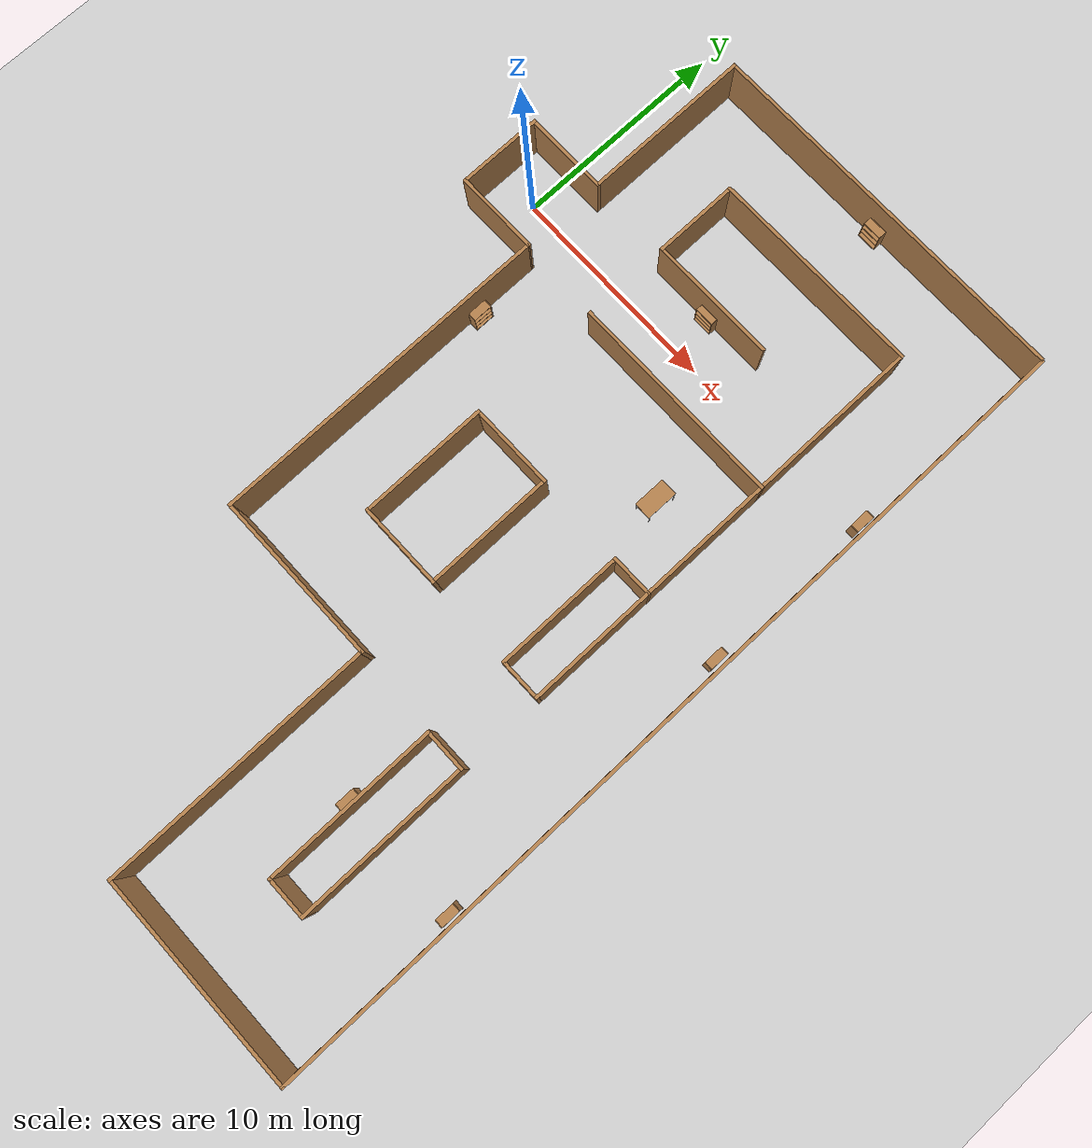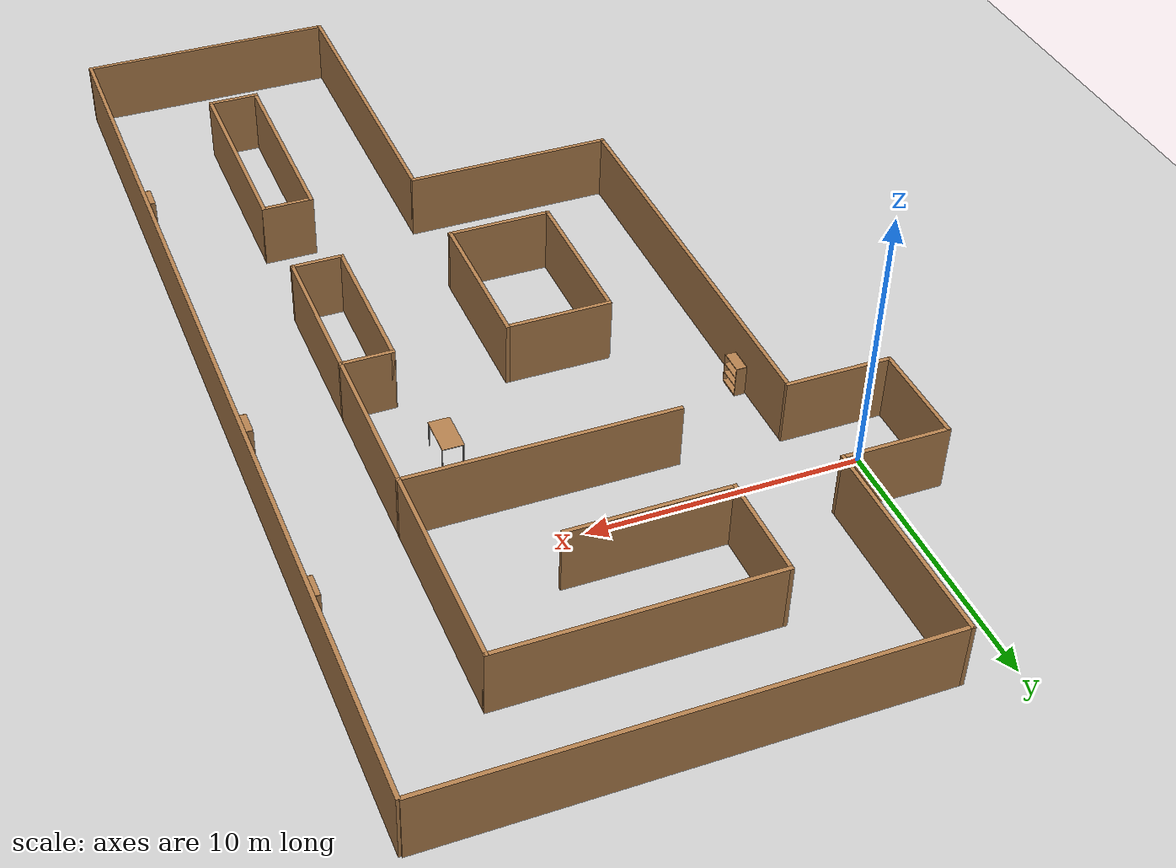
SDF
<sdf version="1.7">
 <world name="default">
  <light name="sun" type="directional">
   <pose>0 0 10 0 -0 0</pose>
   <diffuse>0.8 0.8 0.8 1</diffuse>
   <specular>0.2 0.2 0.2 1</specular>
   <attenuation>
    <range>1000</range>
    <constant>0.9</constant>
    <linear>0.01</linear>
    <quadratic>0.001</quadratic>
   </attenuation>
   <direction>-0.5 0.1 -0.9</direction>
   <spot><inner_angle>0</inner_angle><outer_angle>0</outer_angle><falloff>0</falloff></spot>
  </light>
  <model name="ground_plane">
   <static>1</static>
   <link name="link">
    <collision name="collision">
     <geometry><plane><normal>0 0 1</normal><size>100 100</size></plane></geometry>
     <surface>
      <contact><collide_bitmask>65535</collide_bitmask></contact>
      <friction><ode><mu>100</mu><mu2>50</mu2></ode></friction>
     </surface>
    </collision>
    <visual name="visual">
     <cast_shadows>0</cast_shadows>
     <geometry><plane><normal>0 0 1</normal><size>100 100</size></plane></geometry>
     <material>
      <script><uri>file://media/materials/scripts/gazebo.material</uri><name>Gazebo/Grey</name></script>
     </material>
    </visual>
   </link>
  </model>
  <gravity>0 0 -9.8</gravity>
  <magnetic_field>6e-06 2.3e-05 -4.2e-05</magnetic_field>
  <atmosphere type="adiabatic"/>
  <physics type="ode">
   <max_step_size>0.001</max_step_size>
   <real_time_factor>1</real_time_factor>
   <real_time_update_rate>1000</real_time_update_rate>
  </physics>
  <scene><ambient>0.4 0.4 0.4 1</ambient><background>0.7 0.7 0.7 1</background><shadows>1</shadows></scene>
  <spherical_coordinates>
   <surface_model>EARTH_WGS84</surface_model>
   <latitude_deg>0</latitude_deg>
   <longitude_deg>0</longitude_deg>
   <elevation>0</elevation>
   <heading_deg>0</heading_deg>
  </spherical_coordinates>
  <model name="dans_basic_maze_scaled">
   <pose>8.89521 -10.111 0 0 0 -1.56702</pose>
   <link name="Wall_100">
    <collision name="Wall_100_Collision">
     <geometry><box><size>2 0.15 2.5</size></box></geometry>
     <pose>0 0 1.25 0 -0 0</pose>
    </collision>
    <visual name="Wall_100_Visual">
     <pose>0 0 1.25 0 -0 0</pose>
     <geometry><box><size>2 0.15 2.5</size></box></geometry>
     <material>
      <script><uri>file://media/materials/scripts/gazebo.material</uri><name>Gazebo/Wood</name></script>
      <ambient>1 1 1 1</ambient>
     </material>
     <meta><layer>0</layer></meta>
    </visual>
    <pose>3.9 5.85 0 0 -0 -1.5708</pose>
   </link>
   <link name="Wall_102">
    <collision name="Wall_102_Collision">
     <geometry><box><size>6 0.15 2.5</size></box></geometry>
     <pose>0 0 1.25 0 -0 0</pose>
    </collision>
    <visual name="Wall_102_Visual">
     <pose>0 0 1.25 0 -0 0</pose>
     <geometry><box><size>6 0.15 2.5</size></box></geometry>
     <material>
      <script><uri>file://media/materials/scripts/gazebo.material</uri><name>Gazebo/Wood</name></script>
      <ambient>1 1 1 1</ambient>
     </material>
     <meta><layer>0</layer></meta>
    </visual>
    <pose>0.975 4.925 0 0 -0 3.14159</pose>
   </link>
   <link name="Wall_103">
    <collision name="Wall_103_Collision">
     <geometry><box><size>2 0.15 2.5</size></box></geometry>
     <pose>0 0 1.25 0 -0 0</pose>
    </collision>
    <visual name="Wall_103_Visual">
     <pose>0 0 1.25 0 -0 0</pose>
     <geometry><box><size>2 0.15 2.5</size></box></geometry>
     <material>
      <script><uri>file://media/materials/scripts/gazebo.material</uri><name>Gazebo/Wood</name></script>
      <ambient>1 1 1 1</ambient>
     </material>
     <meta><layer>0</layer></meta>
    </visual>
    <pose>-1.95 5.85 0 0 -0 1.5708</pose>
   </link>
   <link name="Wall_106">
    <collision name="Wall_106_Collision">
     <geometry><box><size>6 0.15 2.5</size></box></geometry>
     <pose>0 0 1.25 0 -0 0</pose>
    </collision>
    <visual name="Wall_106_Visual">
     <pose>0 0 1.25 0 -0 0</pose>
     <geometry><box><size>6 0.15 2.5</size></box></geometry>
     <material>
      <script><uri>file://media/materials/scripts/gazebo.material</uri><name>Gazebo/Wood</name></script>
      <ambient>1 1 1 1</ambient>
     </material>
     <meta><layer>0</layer></meta>
    </visual>
    <pose>-12.1 -0.15 0 0 -0 1.5708</pose>
   </link>
   <link name="Wall_110">
    <collision name="Wall_110_Collision">
     <geometry><box><size>10 0.15 2.5</size></box></geometry>
     <pose>0 0 1.25 0 -0 0</pose>
    </collision>
    <visual name="Wall_110_Visual">
     <pose>0 0 1.25 0 -0 0</pose>
     <geometry><box><size>10 0.15 2.5</size></box></geometry>
     <material>
      <script><uri>file://media/materials/scripts/gazebo.material</uri><name>Gazebo/Wood</name></script>
      <ambient>1 1 1 1</ambient>
     </material>
     <meta><layer>0</layer></meta>
    </visual>
    <pose>-8.08614 1.85905 0 0 -0 -1.5708</pose>
   </link>
   <link name="Wall_25">
    <collision name="Wall_25_Collision">
     <geometry><box><size>4 0.15 2.5</size></box></geometry>
     <pose>0 0 1.25 0 -0 0</pose>
    </collision>
    <visual name="Wall_25_Visual">
     <pose>0 0 1.25 0 -0 0</pose>
     <geometry><box><size>4 0.15 2.5</size></box></geometry>
     <material>
      <script><uri>file://media/materials/scripts/gazebo.material</uri><name>Gazebo/Wood</name></script>
      <ambient>1 1 1 1</ambient>
     </material>
     <meta><layer>0</layer></meta>
    </visual>
    <pose>-12.1 -8.85 0 0 -0 -1.5708</pose>
   </link>
   <link name="Wall_27">
    <collision name="Wall_27_Collision">
     <geometry><box><size>4 0.15 2.5</size></box></geometry>
     <pose>0 0 1.25 0 -0 0</pose>
    </collision>
    <visual name="Wall_27_Visual">
     <pose>0 0 1.25 0 -0 0</pose>
     <geometry><box><size>4 0.15 2.5</size></box></geometry>
     <material>
      <script><uri>file://media/materials/scripts/gazebo.material</uri><name>Gazebo/Wood</name></script>
      <ambient>1 1 1 1</ambient>
     </material>
     <meta><layer>0</layer></meta>
    </visual>
    <pose>-10.175 -10.775 0 0 -0 0</pose>
   </link>
   <link name="Wall_29">
    <collision name="Wall_29_Collision">
     <geometry><box><size>4 0.15 2.5</size></box></geometry>
     <pose>0 0 1.25 0 -0 0</pose>
    </collision>
    <visual name="Wall_29_Visual">
     <pose>0 0 1.25 0 -0 0</pose>
     <geometry><box><size>4 0.15 2.5</size></box></geometry>
     <material>
      <script><uri>file://media/materials/scripts/gazebo.material</uri><name>Gazebo/Wood</name></script>
      <ambient>1 1 1 1</ambient>
     </material>
     <meta><layer>0</layer></meta>
    </visual>
    <pose>-8.25 -8.85 0 0 -0 1.5708</pose>
   </link>
   <link name="Wall_31">
    <collision name="Wall_31_Collision">
     <geometry><box><size>16 0.15 2.5</size></box></geometry>
     <pose>0 0 1.25 0 -0 0</pose>
    </collision>
    <visual name="Wall_31_Visual">
     <pose>0 0 1.25 0 -0 0</pose>
     <geometry><box><size>16 0.15 2.5</size></box></geometry>
     <material>
      <script><uri>file://media/materials/scripts/gazebo.material</uri><name>Gazebo/Wood</name></script>
      <ambient>1 1 1 1</ambient>
     </material>
     <meta><layer>0</layer></meta>
    </visual>
    <pose>-0.325 -6.925 0 0 -0 0</pose>
   </link>
   <link name="Wall_33">
    <collision name="Wall_33_Collision">
     <geometry><box><size>8 0.15 2.5</size></box></geometry>
     <pose>0 0 1.25 0 -0 0</pose>
    </collision>
    <visual name="Wall_33_Visual">
     <pose>0 0 1.25 0 -0 0</pose>
     <geometry><box><size>8 0.15 2.5</size></box></geometry>
     <material>
      <script><uri>file://media/materials/scripts/gazebo.material</uri><name>Gazebo/Wood</name></script>
      <ambient>1 1 1 1</ambient>
     </material>
     <meta><layer>0</layer></meta>
    </visual>
    <pose>7.6 -3 0 0 -0 1.5708</pose>
   </link>
   <link name="Wall_35">
    <collision name="Wall_35_Collision">
     <geometry><box><size>12.5 0.15 2.5</size></box></geometry>
     <pose>0 0 1.25 0 -0 0</pose>
    </collision>
    <visual name="Wall_35_Visual">
     <pose>0 0 1.25 0 -0 0</pose>
     <geometry><box><size>12.5 0.15 2.5</size></box></geometry>
     <material>
      <script><uri>file://media/materials/scripts/gazebo.material</uri><name>Gazebo/Wood</name></script>
      <ambient>1 1 1 1</ambient>
     </material>
     <meta><layer>0</layer></meta>
    </visual>
    <pose>13.775 0.925 0 0 -0 0</pose>
   </link>
   <link name="Wall_41">
    <collision name="Wall_41_Collision">
     <geometry><box><size>10 0.15 2.5</size></box></geometry>
     <pose>0 0 1.25 0 -0 0</pose>
    </collision>
    <visual name="Wall_41_Visual">
     <pose>0 0 1.25 0 -0 0</pose>
     <geometry><box><size>10 0.15 2.5</size></box></geometry>
     <material>
      <script><uri>file://media/materials/scripts/gazebo.material</uri><name>Gazebo/Wood</name></script>
      <ambient>1 1 1 1</ambient>
     </material>
     <meta><layer>0</layer></meta>
    </visual>
    <pose>19.95 5.85 0 0 -0 1.5708</pose>
   </link>
   <link name="Wall_43">
    <collision name="Wall_43_Collision">
     <geometry><box><size>40 0.15 2.5</size></box></geometry>
     <pose>0 0 1.25 0 -0 0</pose>
    </collision>
    <visual name="Wall_43_Visual">
     <pose>0 0 1.25 0 -0 0</pose>
     <geometry><box><size>40 0.15 2.5</size></box></geometry>
     <material>
      <script><uri>file://media/materials/scripts/gazebo.material</uri><name>Gazebo/Wood</name></script>
      <ambient>1 1 1 1</ambient>
     </material>
     <meta><layer>0</layer></meta>
    </visual>
    <pose>0.025 10.775 0 0 -0 3.14159</pose>
   </link>
   <link name="Wall_45">
    <collision name="Wall_45_Collision">
     <geometry><box><size>8 0.15 2.5</size></box></geometry>
     <pose>0 0 1.25 0 -0 0</pose>
    </collision>
    <visual name="Wall_45_Visual">
     <pose>0 0 1.25 0 -0 0</pose>
     <geometry><box><size>8 0.15 2.5</size></box></geometry>
     <material>
      <script><uri>file://media/materials/scripts/gazebo.material</uri><name>Gazebo/Wood</name></script>
      <ambient>1 1 1 1</ambient>
     </material>
     <meta><layer>0</layer></meta>
    </visual>
    <pose>-16.025 -6.925 0 0 -0 3.14159</pose>
   </link>
   <link name="Wall_47">
    <collision name="Wall_47_Collision">
     <geometry><box><size>17.75 0.15 2.5</size></box></geometry>
     <pose>0 0 1.25 0 -0 0</pose>
    </collision>
    <visual name="Wall_47_Visual">
     <pose>0 0 1.25 0 -0 0</pose>
     <geometry><box><size>17.75 0.15 2.5</size></box></geometry>
     <material>
      <script><uri>file://media/materials/scripts/gazebo.material</uri><name>Gazebo/Wood</name></script>
      <ambient>1 1 1 1</ambient>
     </material>
     <meta><layer>0</layer></meta>
    </visual>
    <pose>-19.95 1.875 0 0 -0 1.5708</pose>
   </link>
   <link name="Wall_55">
    <collision name="Wall_55_Collision">
     <geometry><box><size>2 0.15 2.5</size></box></geometry>
     <pose>0 0 1.25 0 -0 0</pose>
    </collision>
    <visual name="Wall_55_Visual">
     <pose>0 0 1.25 0 -0 0</pose>
     <geometry><box><size>2 0.15 2.5</size></box></geometry>
     <material>
      <script><uri>file://media/materials/scripts/gazebo.material</uri><name>Gazebo/Wood</name></script>
      <ambient>1 1 1 1</ambient>
     </material>
     <meta><layer>0</layer></meta>
    </visual>
    <pose>7.76099 5.86395 0 0 -0 -1.5708</pose>
   </link>
   <link name="Wall_57">
    <collision name="Wall_57_Collision">
     <geometry><box><size>8 0.15 2.5</size></box></geometry>
     <pose>0 0 1.25 0 -0 0</pose>
    </collision>
    <visual name="Wall_57_Visual">
     <pose>0 0 1.25 0 -0 0</pose>
     <geometry><box><size>8 0.15 2.5</size></box></geometry>
     <material>
      <script><uri>file://media/materials/scripts/gazebo.material</uri><name>Gazebo/Wood</name></script>
      <ambient>1 1 1 1</ambient>
     </material>
     <meta><layer>0</layer></meta>
    </visual>
    <pose>11.686 6.78895 0 0 -0 0</pose>
   </link>
   <link name="Wall_59">
    <collision name="Wall_59_Collision">
     <geometry><box><size>8 0.15 2.5</size></box></geometry>
     <pose>0 0 1.25 0 -0 0</pose>
    </collision>
    <visual name="Wall_59_Visual">
     <pose>0 0 1.25 0 -0 0</pose>
     <geometry><box><size>8 0.15 2.5</size></box></geometry>
     <material>
      <script><uri>file://media/materials/scripts/gazebo.material</uri><name>Gazebo/Wood</name></script>
      <ambient>1 1 1 1</ambient>
     </material>
     <meta><layer>0</layer></meta>
    </visual>
    <pose>11.686 4.93895 0 0 -0 0</pose>
   </link>
   <link name="Wall_61">
    <collision name="Wall_61_Collision">
     <geometry><box><size>2 0.15 2.5</size></box></geometry>
     <pose>0 0 1.25 0 -0 0</pose>
    </collision>
    <visual name="Wall_61_Visual">
     <pose>0 0 1.25 0 -0 0</pose>
     <geometry><box><size>2 0.15 2.5</size></box></geometry>
     <material>
      <script><uri>file://media/materials/scripts/gazebo.material</uri><name>Gazebo/Wood</name></script>
      <ambient>1 1 1 1</ambient>
     </material>
     <meta><layer>0</layer></meta>
    </visual>
    <pose>15.611 5.86395 0 0 -0 -1.5708</pose>
   </link>
   <link name="Wall_69">
    <collision name="Wall_69_Collision">
     <geometry><box><size>6 0.15 2.5</size></box></geometry>
     <pose>0 0 1.25 0 -0 0</pose>
    </collision>
    <visual name="Wall_69_Visual">
     <pose>0 0 1.25 0 -0 0</pose>
     <geometry><box><size>6 0.15 2.5</size></box></geometry>
     <material>
      <script><uri>file://media/materials/scripts/gazebo.material</uri><name>Gazebo/Wood</name></script>
      <ambient>1 1 1 1</ambient>
     </material>
     <meta><layer>0</layer></meta>
    </visual>
    <pose>0.881394 0.762085 0 0 -0 3.14159</pose>
   </link>
   <link name="Wall_80">
    <collision name="Wall_80_Collision">
     <geometry><box><size>4 0.15 2.5</size></box></geometry>
     <pose>0 0 1.25 0 -0 0</pose>
    </collision>
    <visual name="Wall_80_Visual">
     <pose>0 0 1.25 0 -0 0</pose>
     <geometry><box><size>4 0.15 2.5</size></box></geometry>
     <material>
      <script><uri>file://media/materials/scripts/gazebo.material</uri><name>Gazebo/Wood</name></script>
      <ambient>1 1 1 1</ambient>
     </material>
     <meta><layer>0</layer></meta>
    </visual>
    <pose>3.8064 -1.16291 0 0 -0 -1.5708</pose>
   </link>
   <link name="Wall_82">
    <collision name="Wall_82_Collision">
     <geometry><box><size>6 0.15 2.5</size></box></geometry>
     <pose>0 0 1.25 0 -0 0</pose>
    </collision>
    <visual name="Wall_82_Visual">
     <pose>0 0 1.25 0 -0 0</pose>
     <geometry><box><size>6 0.15 2.5</size></box></geometry>
     <material>
      <script><uri>file://media/materials/scripts/gazebo.material</uri><name>Gazebo/Wood</name></script>
      <ambient>1 1 1 1</ambient>
     </material>
     <meta><layer>0</layer></meta>
    </visual>
    <pose>0.881394 -3.08792 0 0 -0 3.14159</pose>
   </link>
   <link name="Wall_84">
    <collision name="Wall_84_Collision">
     <geometry><box><size>4 0.15 2.5</size></box></geometry>
     <pose>0 0 1.25 0 -0 0</pose>
    </collision>
    <visual name="Wall_84_Visual">
     <pose>0 0 1.25 0 -0 0</pose>
     <geometry><box><size>4 0.15 2.5</size></box></geometry>
     <material>
      <script><uri>file://media/materials/scripts/gazebo.material</uri><name>Gazebo/Wood</name></script>
      <ambient>1 1 1 1</ambient>
     </material>
     <meta><layer>0</layer></meta>
    </visual>
    <pose>-2.04361 -1.16291 0 0 -0 -1.5708</pose>
   </link>
   <link name="Wall_89">
    <collision name="Wall_89_Collision">
     <geometry><box><size>4 0.15 2.5</size></box></geometry>
     <pose>0 0 1.25 0 -0 0</pose>
    </collision>
    <visual name="Wall_89_Visual">
     <pose>0 0 1.25 0 -0 0</pose>
     <geometry><box><size>4 0.15 2.5</size></box></geometry>
     <material>
      <script><uri>file://media/materials/scripts/gazebo.material</uri><name>Gazebo/Wood</name></script>
      <ambient>1 1 1 1</ambient>
     </material>
     <meta><layer>0</layer></meta>
    </visual>
    <pose>-14.025 -3.075 0 0 -0 3.14159</pose>
   </link>
   <link name="Wall_91">
    <collision name="Wall_91_Collision">
     <geometry><box><size>10 0.15 2.5</size></box></geometry>
     <pose>0 0 1.25 0 -0 0</pose>
    </collision>
    <visual name="Wall_91_Visual">
     <pose>0 0 1.25 0 -0 0</pose>
     <geometry><box><size>10 0.15 2.5</size></box></geometry>
     <material>
      <script><uri>file://media/materials/scripts/gazebo.material</uri><name>Gazebo/Wood</name></script>
      <ambient>1 1 1 1</ambient>
     </material>
     <meta><layer>0</layer></meta>
    </visual>
    <pose>-15.95 1.85 0 0 -0 1.5708</pose>
   </link>
   <link name="Wall_98">
    <collision name="Wall_98_Collision">
     <geometry><box><size>20 0.15 2.5</size></box></geometry>
     <pose>0 0 1.25 0 -0 0</pose>
    </collision>
    <visual name="Wall_98_Visual">
     <pose>0 0 1.25 0 -0 0</pose>
     <geometry><box><size>20 0.15 2.5</size></box></geometry>
     <material>
      <script><uri>file://media/materials/scripts/gazebo.material</uri><name>Gazebo/Wood</name></script>
      <ambient>1 1 1 1</ambient>
     </material>
     <meta><layer>0</layer></meta>
    </visual>
    <pose>-6.025 6.775 0 0 -0 0</pose>
   </link>
   <static>1</static>
  </model>
  <model name="bookshelf">
   <static>1</static>
   <link name="link">
    <inertial><mass>1</mass></inertial>
    <collision name="back">
     <pose>0 0.005 0.6 0 -0 0</pose>
     <geometry><box><size>0.9 0.01 1.2</size></box></geometry>
    </collision>
    <visual name="visual1">
     <pose>0 0.005 0.6 0 -0 0</pose>
     <geometry><box><size>0.9 0.01 1.2</size></box></geometry>
     <material>
      <script><uri>file://media/materials/scripts/gazebo.material</uri><name>Gazebo/Wood</name></script>
     </material>
    </visual>
    <collision name="left_side">
     <pose>0.45 -0.195 0.6 0 -0 0</pose>
     <geometry><box><size>0.02 0.4 1.2</size></box></geometry>
    </collision>
    <visual name="visual2">
     <pose>0.45 -0.195 0.6 0 -0 0</pose>
     <geometry><box><size>0.02 0.4 1.2</size></box></geometry>
     <material>
      <script><uri>file://media/materials/scripts/gazebo.material</uri><name>Gazebo/Wood</name></script>
     </material>
    </visual>
    <collision name="right_side">
     <pose>-0.45 -0.195 0.6 0 -0 0</pose>
     <geometry><box><size>0.02 0.4 1.2</size></box></geometry>
    </collision>
    <visual name="visual3">
     <pose>-0.45 -0.195 0.6 0 -0 0</pose>
     <geometry><box><size>0.02 0.4 1.2</size></box></geometry>
     <material>
      <script><uri>file://media/materials/scripts/gazebo.material</uri><name>Gazebo/Wood</name></script>
     </material>
    </visual>
    <collision name="bottom">
     <pose>0 -0.195 0.03 0 -0 0</pose>
     <geometry><box><size>0.88 0.4 0.06</size></box></geometry>
    </collision>
    <visual name="visual4">
     <pose>0 -0.195 0.03 0 -0 0</pose>
     <geometry><box><size>0.88 0.4 0.06</size></box></geometry>
     <material>
      <script><uri>file://media/materials/scripts/gazebo.material</uri><name>Gazebo/Wood</name></script>
     </material>
    </visual>
    <collision name="top">
     <pose>0 -0.195 1.19 0 -0 0</pose>
     <geometry><box><size>0.88 0.4 0.02</size></box></geometry>
    </collision>
    <visual name="visual5">
     <pose>0 -0.195 1.19 0 -0 0</pose>
     <geometry><box><size>0.88 0.4 0.02</size></box></geometry>
     <material>
      <script><uri>file://media/materials/scripts/gazebo.material</uri><name>Gazebo/Wood</name></script>
     </material>
    </visual>
    <collision name="low_shelf">
     <pose>0 -0.195 0.43 0 -0 0</pose>
     <geometry><box><size>0.88 0.4 0.02</size></box></geometry>
    </collision>
    <visual name="visual6">
     <pose>0 -0.195 0.43 0 -0 0</pose>
     <geometry><box><size>0.88 0.4 0.02</size></box></geometry>
     <material>
      <script><uri>file://media/materials/scripts/gazebo.material</uri><name>Gazebo/Wood</name></script>
     </material>
    </visual>
    <collision name="high_shelf">
     <pose>0 -0.195 0.8 0 -0 0</pose>
     <geometry><box><size>0.88 0.4 0.02</size></box></geometry>
    </collision>
    <visual name="visual7">
     <pose>0 -0.195 0.8 0 -0 0</pose>
     <geometry><box><size>0.88 0.4 0.02</size></box></geometry>
     <material>
      <script><uri>file://media/materials/scripts/gazebo.material</uri><name>Gazebo/Wood</name></script>
     </material>
    </visual>
   </link>
   <pose>10.8122 9.75594 0 0 -0 0</pose>
  </model>
  <model name="table">
   <static>1</static>
   <link name="link">
    <collision name="surface">
     <pose>0 0 1 0 -0 0</pose>
     <geometry><box><size>1.5 0.8 0.03</size></box></geometry>
     <surface><friction><ode><mu>0.6</mu><mu2>0.6</mu2></ode></friction></surface>
    </collision>
    <visual name="visual1">
     <pose>0 0 1 0 -0 0</pose>
     <geometry><box><size>1.5 0.8 0.03</size></box></geometry>
     <material>
      <script><uri>file://media/materials/scripts/gazebo.material</uri><name>Gazebo/Wood</name></script>
     </material>
    </visual>
    <collision name="front_left_leg">
     <pose>0.68 0.38 0.5 0 -0 0</pose>
     <geometry><cylinder><radius>0.02</radius><length>1</length></cylinder></geometry>
    </collision>
    <visual name="front_left_leg">
     <pose>0.68 0.38 0.5 0 -0 0</pose>
     <geometry><cylinder><radius>0.02</radius><length>1</length></cylinder></geometry>
     <material>
      <script><uri>file://media/materials/scripts/gazebo.material</uri><name>Gazebo/Grey</name></script>
     </material>
    </visual>
    <collision name="front_right_leg">
     <pose>0.68 -0.38 0.5 0 -0 0</pose>
     <geometry><cylinder><radius>0.02</radius><length>1</length></cylinder></geometry>
    </collision>
    <visual name="front_right_leg">
     <pose>0.68 -0.38 0.5 0 -0 0</pose>
     <geometry><cylinder><radius>0.02</radius><length>1</length></cylinder></geometry>
     <material>
      <script><uri>file://media/materials/scripts/gazebo.material</uri><name>Gazebo/Grey</name></script>
     </material>
    </visual>
    <collision name="back_right_leg">
     <pose>-0.68 -0.38 0.5 0 -0 0</pose>
     <geometry><cylinder><radius>0.02</radius><length>1</length></cylinder></geometry>
    </collision>
    <visual name="back_right_leg">
     <pose>-0.68 -0.38 0.5 0 -0 0</pose>
     <geometry><cylinder><radius>0.02</radius><length>1</length></cylinder></geometry>
     <material>
      <script><uri>file://media/materials/scripts/gazebo.material</uri><name>Gazebo/Grey</name></script>
     </material>
    </visual>
    <collision name="back_left_leg">
     <pose>-0.68 0.38 0.5 0 -0 0</pose>
     <geometry><cylinder><radius>0.02</radius><length>1</length></cylinder></geometry>
    </collision>
    <visual name="back_left_leg">
     <pose>-0.68 0.38 0.5 0 -0 0</pose>
     <geometry><cylinder><radius>0.02</radius><length>1</length></cylinder></geometry>
     <material>
      <script><uri>file://media/materials/scripts/gazebo.material</uri><name>Gazebo/Grey</name></script>
     </material>
    </visual>
   </link>
   <pose>12.9709 -5.10769 0 0 -0 1.57</pose>
  </model>
  <model name="bookshelf_0">
   <static>1</static>
   <link name="link">
    <inertial><mass>1</mass></inertial>
    <collision name="back">
     <pose>0 0.005 0.6 0 -0 0</pose>
     <geometry><box><size>0.9 0.01 1.2</size></box></geometry>
    </collision>
    <visual name="visual1">
     <pose>0 0.005 0.6 0 -0 0</pose>
     <geometry><box><size>0.9 0.01 1.2</size></box></geometry>
     <material>
      <script><uri>file://media/materials/scripts/gazebo.material</uri><name>Gazebo/Wood</name></script>
     </material>
    </visual>
    <collision name="left_side">
     <pose>0.45 -0.195 0.6 0 -0 0</pose>
     <geometry><box><size>0.02 0.4 1.2</size></box></geometry>
    </collision>
    <visual name="visual2">
     <pose>0.45 -0.195 0.6 0 -0 0</pose>
     <geometry><box><size>0.02 0.4 1.2</size></box></geometry>
     <material>
      <script><uri>file://media/materials/scripts/gazebo.material</uri><name>Gazebo/Wood</name></script>
     </material>
    </visual>
    <collision name="right_side">
     <pose>-0.45 -0.195 0.6 0 -0 0</pose>
     <geometry><box><size>0.02 0.4 1.2</size></box></geometry>
    </collision>
    <visual name="visual3">
     <pose>-0.45 -0.195 0.6 0 -0 0</pose>
     <geometry><box><size>0.02 0.4 1.2</size></box></geometry>
     <material>
      <script><uri>file://media/materials/scripts/gazebo.material</uri><name>Gazebo/Wood</name></script>
     </material>
    </visual>
    <collision name="bottom">
     <pose>0 -0.195 0.03 0 -0 0</pose>
     <geometry><box><size>0.88 0.4 0.06</size></box></geometry>
    </collision>
    <visual name="visual4">
     <pose>0 -0.195 0.03 0 -0 0</pose>
     <geometry><box><size>0.88 0.4 0.06</size></box></geometry>
     <material>
      <script><uri>file://media/materials/scripts/gazebo.material</uri><name>Gazebo/Wood</name></script>
     </material>
    </visual>
    <collision name="top">
     <pose>0 -0.195 1.19 0 -0 0</pose>
     <geometry><box><size>0.88 0.4 0.02</size></box></geometry>
    </collision>
    <visual name="visual5">
     <pose>0 -0.195 1.19 0 -0 0</pose>
     <geometry><box><size>0.88 0.4 0.02</size></box></geometry>
     <material>
      <script><uri>file://media/materials/scripts/gazebo.material</uri><name>Gazebo/Wood</name></script>
     </material>
    </visual>
    <collision name="low_shelf">
     <pose>0 -0.195 0.43 0 -0 0</pose>
     <geometry><box><size>0.88 0.4 0.02</size></box></geometry>
    </collision>
    <visual name="visual6">
     <pose>0 -0.195 0.43 0 -0 0</pose>
     <geometry><box><size>0.88 0.4 0.02</size></box></geometry>
     <material>
      <script><uri>file://media/materials/scripts/gazebo.material</uri><name>Gazebo/Wood</name></script>
     </material>
    </visual>
    <collision name="high_shelf">
     <pose>0 -0.195 0.8 0 -0 0</pose>
     <geometry><box><size>0.88 0.4 0.02</size></box></geometry>
    </collision>
    <visual name="visual7">
     <pose>0 -0.195 0.8 0 -0 0</pose>
     <geometry><box><size>0.88 0.4 0.02</size></box></geometry>
     <material>
      <script><uri>file://media/materials/scripts/gazebo.material</uri><name>Gazebo/Wood</name></script>
     </material>
    </visual>
   </link>
   <pose>8.7698 1.98342 0 0 -0 0</pose>
  </model>
  <model name="bookshelf_1">
   <static>1</static>
   <link name="link">
    <inertial><mass>1</mass></inertial>
    <collision name="back">
     <pose>0 0.005 0.6 0 -0 0</pose>
     <geometry><box><size>0.9 0.01 1.2</size></box></geometry>
    </collision>
    <visual name="visual1">
     <pose>0 0.005 0.6 0 -0 0</pose>
     <geometry><box><size>0.9 0.01 1.2</size></box></geometry>
     <material>
      <script><uri>file://media/materials/scripts/gazebo.material</uri><name>Gazebo/Wood</name></script>
     </material>
    </visual>
    <collision name="left_side">
     <pose>0.45 -0.195 0.6 0 -0 0</pose>
     <geometry><box><size>0.02 0.4 1.2</size></box></geometry>
    </collision>
    <visual name="visual2">
     <pose>0.45 -0.195 0.6 0 -0 0</pose>
     <geometry><box><size>0.02 0.4 1.2</size></box></geometry>
     <material>
      <script><uri>file://media/materials/scripts/gazebo.material</uri><name>Gazebo/Wood</name></script>
     </material>
    </visual>
    <collision name="right_side">
     <pose>-0.45 -0.195 0.6 0 -0 0</pose>
     <geometry><box><size>0.02 0.4 1.2</size></box></geometry>
    </collision>
    <visual name="visual3">
     <pose>-0.45 -0.195 0.6 0 -0 0</pose>
     <geometry><box><size>0.02 0.4 1.2</size></box></geometry>
     <material>
      <script><uri>file://media/materials/scripts/gazebo.material</uri><name>Gazebo/Wood</name></script>
     </material>
    </visual>
    <collision name="bottom">
     <pose>0 -0.195 0.03 0 -0 0</pose>
     <geometry><box><size>0.88 0.4 0.06</size></box></geometry>
    </collision>
    <visual name="visual4">
     <pose>0 -0.195 0.03 0 -0 0</pose>
     <geometry><box><size>0.88 0.4 0.06</size></box></geometry>
     <material>
      <script><uri>file://media/materials/scripts/gazebo.material</uri><name>Gazebo/Wood</name></script>
     </material>
    </visual>
    <collision name="top">
     <pose>0 -0.195 1.19 0 -0 0</pose>
     <geometry><box><size>0.88 0.4 0.02</size></box></geometry>
    </collision>
    <visual name="visual5">
     <pose>0 -0.195 1.19 0 -0 0</pose>
     <geometry><box><size>0.88 0.4 0.02</size></box></geometry>
     <material>
      <script><uri>file://media/materials/scripts/gazebo.material</uri><name>Gazebo/Wood</name></script>
     </material>
    </visual>
    <collision name="low_shelf">
     <pose>0 -0.195 0.43 0 -0 0</pose>
     <geometry><box><size>0.88 0.4 0.02</size></box></geometry>
    </collision>
    <visual name="visual6">
     <pose>0 -0.195 0.43 0 -0 0</pose>
     <geometry><box><size>0.88 0.4 0.02</size></box></geometry>
     <material>
      <script><uri>file://media/materials/scripts/gazebo.material</uri><name>Gazebo/Wood</name></script>
     </material>
    </visual>
    <collision name="high_shelf">
     <pose>0 -0.195 0.8 0 -0 0</pose>
     <geometry><box><size>0.88 0.4 0.02</size></box></geometry>
    </collision>
    <visual name="visual7">
     <pose>0 -0.195 0.8 0 -0 0</pose>
     <geometry><box><size>0.88 0.4 0.02</size></box></geometry>
     <material>
      <script><uri>file://media/materials/scripts/gazebo.material</uri><name>Gazebo/Wood</name></script>
     </material>
    </visual>
   </link>
   <pose>19.4821 0.293917 0 0 0 -1.57</pose>
  </model>
  <model name="bookshelf_1_clone">
   <static>1</static>
   <link name="link">
    <inertial><mass>1</mass></inertial>
    <collision name="back">
     <pose>0 0.005 0.6 0 -0 0</pose>
     <geometry><box><size>0.9 0.01 1.2</size></box></geometry>
    </collision>
    <visual name="visual1">
     <pose>0 0.005 0.6 0 -0 0</pose>
     <geometry><box><size>0.9 0.01 1.2</size></box></geometry>
     <material>
      <script><uri>file://media/materials/scripts/gazebo.material</uri><name>Gazebo/Wood</name></script>
     </material>
    </visual>
    <collision name="left_side">
     <pose>0.45 -0.195 0.6 0 -0 0</pose>
     <geometry><box><size>0.02 0.4 1.2</size></box></geometry>
    </collision>
    <visual name="visual2">
     <pose>0.45 -0.195 0.6 0 -0 0</pose>
     <geometry><box><size>0.02 0.4 1.2</size></box></geometry>
     <material>
      <script><uri>file://media/materials/scripts/gazebo.material</uri><name>Gazebo/Wood</name></script>
     </material>
    </visual>
    <collision name="right_side">
     <pose>-0.45 -0.195 0.6 0 -0 0</pose>
     <geometry><box><size>0.02 0.4 1.2</size></box></geometry>
    </collision>
    <visual name="visual3">
     <pose>-0.45 -0.195 0.6 0 -0 0</pose>
     <geometry><box><size>0.02 0.4 1.2</size></box></geometry>
     <material>
      <script><uri>file://media/materials/scripts/gazebo.material</uri><name>Gazebo/Wood</name></script>
     </material>
    </visual>
    <collision name="bottom">
     <pose>0 -0.195 0.03 0 -0 0</pose>
     <geometry><box><size>0.88 0.4 0.06</size></box></geometry>
    </collision>
    <visual name="visual4">
     <pose>0 -0.195 0.03 0 -0 0</pose>
     <geometry><box><size>0.88 0.4 0.06</size></box></geometry>
     <material>
      <script><uri>file://media/materials/scripts/gazebo.material</uri><name>Gazebo/Wood</name></script>
     </material>
    </visual>
    <collision name="top">
     <pose>0 -0.195 1.19 0 -0 0</pose>
     <geometry><box><size>0.88 0.4 0.02</size></box></geometry>
    </collision>
    <visual name="visual5">
     <pose>0 -0.195 1.19 0 -0 0</pose>
     <geometry><box><size>0.88 0.4 0.02</size></box></geometry>
     <material>
      <script><uri>file://media/materials/scripts/gazebo.material</uri><name>Gazebo/Wood</name></script>
     </material>
    </visual>
    <collision name="low_shelf">
     <pose>0 -0.195 0.43 0 -0 0</pose>
     <geometry><box><size>0.88 0.4 0.02</size></box></geometry>
    </collision>
    <visual name="visual6">
     <pose>0 -0.195 0.43 0 -0 0</pose>
     <geometry><box><size>0.88 0.4 0.02</size></box></geometry>
     <material>
      <script><uri>file://media/materials/scripts/gazebo.material</uri><name>Gazebo/Wood</name></script>
     </material>
    </visual>
    <collision name="high_shelf">
     <pose>0 -0.195 0.8 0 -0 0</pose>
     <geometry><box><size>0.88 0.4 0.02</size></box></geometry>
    </collision>
    <visual name="visual7">
     <pose>0 -0.195 0.8 0 -0 0</pose>
     <geometry><box><size>0.88 0.4 0.02</size></box></geometry>
     <material>
      <script><uri>file://media/materials/scripts/gazebo.material</uri><name>Gazebo/Wood</name></script>
     </material>
    </visual>
   </link>
   <pose>19.4492 -7.76646 0 0 0 -1.57</pose>
  </model>
  <model name="bookshelf_1_clone_clone">
   <static>1</static>
   <link name="link">
    <inertial><mass>1</mass></inertial>
    <collision name="back">
     <pose>0 0.005 0.6 0 -0 0</pose>
     <geometry><box><size>0.9 0.01 1.2</size></box></geometry>
    </collision>
    <visual name="visual1">
     <pose>0 0.005 0.6 0 -0 0</pose>
     <geometry><box><size>0.9 0.01 1.2</size></box></geometry>
     <material>
      <script><uri>file://media/materials/scripts/gazebo.material</uri><name>Gazebo/Wood</name></script>
     </material>
    </visual>
    <collision name="left_side">
     <pose>0.45 -0.195 0.6 0 -0 0</pose>
     <geometry><box><size>0.02 0.4 1.2</size></box></geometry>
    </collision>
    <visual name="visual2">
     <pose>0.45 -0.195 0.6 0 -0 0</pose>
     <geometry><box><size>0.02 0.4 1.2</size></box></geometry>
     <material>
      <script><uri>file://media/materials/scripts/gazebo.material</uri><name>Gazebo/Wood</name></script>
     </material>
    </visual>
    <collision name="right_side">
     <pose>-0.45 -0.195 0.6 0 -0 0</pose>
     <geometry><box><size>0.02 0.4 1.2</size></box></geometry>
    </collision>
    <visual name="visual3">
     <pose>-0.45 -0.195 0.6 0 -0 0</pose>
     <geometry><box><size>0.02 0.4 1.2</size></box></geometry>
     <material>
      <script><uri>file://media/materials/scripts/gazebo.material</uri><name>Gazebo/Wood</name></script>
     </material>
    </visual>
    <collision name="bottom">
     <pose>0 -0.195 0.03 0 -0 0</pose>
     <geometry><box><size>0.88 0.4 0.06</size></box></geometry>
    </collision>
    <visual name="visual4">
     <pose>0 -0.195 0.03 0 -0 0</pose>
     <geometry><box><size>0.88 0.4 0.06</size></box></geometry>
     <material>
      <script><uri>file://media/materials/scripts/gazebo.material</uri><name>Gazebo/Wood</name></script>
     </material>
    </visual>
    <collision name="top">
     <pose>0 -0.195 1.19 0 -0 0</pose>
     <geometry><box><size>0.88 0.4 0.02</size></box></geometry>
    </collision>
    <visual name="visual5">
     <pose>0 -0.195 1.19 0 -0 0</pose>
     <geometry><box><size>0.88 0.4 0.02</size></box></geometry>
     <material>
      <script><uri>file://media/materials/scripts/gazebo.material</uri><name>Gazebo/Wood</name></script>
     </material>
    </visual>
    <collision name="low_shelf">
     <pose>0 -0.195 0.43 0 -0 0</pose>
     <geometry><box><size>0.88 0.4 0.02</size></box></geometry>
    </collision>
    <visual name="visual6">
     <pose>0 -0.195 0.43 0 -0 0</pose>
     <geometry><box><size>0.88 0.4 0.02</size></box></geometry>
     <material>
      <script><uri>file://media/materials/scripts/gazebo.material</uri><name>Gazebo/Wood</name></script>
     </material>
    </visual>
    <collision name="high_shelf">
     <pose>0 -0.195 0.8 0 -0 0</pose>
     <geometry><box><size>0.88 0.4 0.02</size></box></geometry>
    </collision>
    <visual name="visual7">
     <pose>0 -0.195 0.8 0 -0 0</pose>
     <geometry><box><size>0.88 0.4 0.02</size></box></geometry>
     <material>
      <script><uri>file://media/materials/scripts/gazebo.material</uri><name>Gazebo/Wood</name></script>
     </material>
    </visual>
   </link>
   <pose>19.5296 -21.933 0 0 0 -1.57</pose>
  </model>
  <model name="bookshelf_1_clone_clone_0">
   <static>1</static>
   <link name="link">
    <inertial><mass>1</mass></inertial>
    <collision name="back">
     <pose>0 0.005 0.6 0 -0 0</pose>
     <geometry><box><size>0.9 0.01 1.2</size></box></geometry>
    </collision>
    <visual name="visual1">
     <pose>0 0.005 0.6 0 -0 0</pose>
     <geometry><box><size>0.9 0.01 1.2</size></box></geometry>
     <material>
      <script><uri>file://media/materials/scripts/gazebo.material</uri><name>Gazebo/Wood</name></script>
     </material>
    </visual>
    <collision name="left_side">
     <pose>0.45 -0.195 0.6 0 -0 0</pose>
     <geometry><box><size>0.02 0.4 1.2</size></box></geometry>
    </collision>
    <visual name="visual2">
     <pose>0.45 -0.195 0.6 0 -0 0</pose>
     <geometry><box><size>0.02 0.4 1.2</size></box></geometry>
     <material>
      <script><uri>file://media/materials/scripts/gazebo.material</uri><name>Gazebo/Wood</name></script>
     </material>
    </visual>
    <collision name="right_side">
     <pose>-0.45 -0.195 0.6 0 -0 0</pose>
     <geometry><box><size>0.02 0.4 1.2</size></box></geometry>
    </collision>
    <visual name="visual3">
     <pose>-0.45 -0.195 0.6 0 -0 0</pose>
     <geometry><box><size>0.02 0.4 1.2</size></box></geometry>
     <material>
      <script><uri>file://media/materials/scripts/gazebo.material</uri><name>Gazebo/Wood</name></script>
     </material>
    </visual>
    <collision name="bottom">
     <pose>0 -0.195 0.03 0 -0 0</pose>
     <geometry><box><size>0.88 0.4 0.06</size></box></geometry>
    </collision>
    <visual name="visual4">
     <pose>0 -0.195 0.03 0 -0 0</pose>
     <geometry><box><size>0.88 0.4 0.06</size></box></geometry>
     <material>
      <script><uri>file://media/materials/scripts/gazebo.material</uri><name>Gazebo/Wood</name></script>
     </material>
    </visual>
    <collision name="top">
     <pose>0 -0.195 1.19 0 -0 0</pose>
     <geometry><box><size>0.88 0.4 0.02</size></box></geometry>
    </collision>
    <visual name="visual5">
     <pose>0 -0.195 1.19 0 -0 0</pose>
     <geometry><box><size>0.88 0.4 0.02</size></box></geometry>
     <material>
      <script><uri>file://media/materials/scripts/gazebo.material</uri><name>Gazebo/Wood</name></script>
     </material>
    </visual>
    <collision name="low_shelf">
     <pose>0 -0.195 0.43 0 -0 0</pose>
     <geometry><box><size>0.88 0.4 0.02</size></box></geometry>
    </collision>
    <visual name="visual6">
     <pose>0 -0.195 0.43 0 -0 0</pose>
     <geometry><box><size>0.88 0.4 0.02</size></box></geometry>
     <material>
      <script><uri>file://media/materials/scripts/gazebo.material</uri><name>Gazebo/Wood</name></script>
     </material>
    </visual>
    <collision name="high_shelf">
     <pose>0 -0.195 0.8 0 -0 0</pose>
     <geometry><box><size>0.88 0.4 0.02</size></box></geometry>
    </collision>
    <visual name="visual7">
     <pose>0 -0.195 0.8 0 -0 0</pose>
     <geometry><box><size>0.88 0.4 0.02</size></box></geometry>
     <material>
      <script><uri>file://media/materials/scripts/gazebo.material</uri><name>Gazebo/Wood</name></script>
     </material>
    </visual>
   </link>
   <pose>13.7366 -21.9153 0 0 0 -1.57</pose>
  </model>
  <model name="bookshelf_1_clone_clone_0_clone">
   <static>1</static>
   <link name="link">
    <inertial><mass>1</mass></inertial>
    <collision name="back">
     <pose>0 0.005 0.6 0 -0 0</pose>
     <geometry><box><size>0.9 0.01 1.2</size></box></geometry>
    </collision>
    <visual name="visual1">
     <pose>0 0.005 0.6 0 -0 0</pose>
     <geometry><box><size>0.9 0.01 1.2</size></box></geometry>
     <material>
      <script><uri>file://media/materials/scripts/gazebo.material</uri><name>Gazebo/Wood</name></script>
     </material>
    </visual>
    <collision name="left_side">
     <pose>0.45 -0.195 0.6 0 -0 0</pose>
     <geometry><box><size>0.02 0.4 1.2</size></box></geometry>
    </collision>
    <visual name="visual2">
     <pose>0.45 -0.195 0.6 0 -0 0</pose>
     <geometry><box><size>0.02 0.4 1.2</size></box></geometry>
     <material>
      <script><uri>file://media/materials/scripts/gazebo.material</uri><name>Gazebo/Wood</name></script>
     </material>
    </visual>
    <collision name="right_side">
     <pose>-0.45 -0.195 0.6 0 -0 0</pose>
     <geometry><box><size>0.02 0.4 1.2</size></box></geometry>
    </collision>
    <visual name="visual3">
     <pose>-0.45 -0.195 0.6 0 -0 0</pose>
     <geometry><box><size>0.02 0.4 1.2</size></box></geometry>
     <material>
      <script><uri>file://media/materials/scripts/gazebo.material</uri><name>Gazebo/Wood</name></script>
     </material>
    </visual>
    <collision name="bottom">
     <pose>0 -0.195 0.03 0 -0 0</pose>
     <geometry><box><size>0.88 0.4 0.06</size></box></geometry>
    </collision>
    <visual name="visual4">
     <pose>0 -0.195 0.03 0 -0 0</pose>
     <geometry><box><size>0.88 0.4 0.06</size></box></geometry>
     <material>
      <script><uri>file://media/materials/scripts/gazebo.material</uri><name>Gazebo/Wood</name></script>
     </material>
    </visual>
    <collision name="top">
     <pose>0 -0.195 1.19 0 -0 0</pose>
     <geometry><box><size>0.88 0.4 0.02</size></box></geometry>
    </collision>
    <visual name="visual5">
     <pose>0 -0.195 1.19 0 -0 0</pose>
     <geometry><box><size>0.88 0.4 0.02</size></box></geometry>
     <material>
      <script><uri>file://media/materials/scripts/gazebo.material</uri><name>Gazebo/Wood</name></script>
     </material>
    </visual>
    <collision name="low_shelf">
     <pose>0 -0.195 0.43 0 -0 0</pose>
     <geometry><box><size>0.88 0.4 0.02</size></box></geometry>
    </collision>
    <visual name="visual6">
     <pose>0 -0.195 0.43 0 -0 0</pose>
     <geometry><box><size>0.88 0.4 0.02</size></box></geometry>
     <material>
      <script><uri>file://media/materials/scripts/gazebo.material</uri><name>Gazebo/Wood</name></script>
     </material>
    </visual>
    <collision name="high_shelf">
     <pose>0 -0.195 0.8 0 -0 0</pose>
     <geometry><box><size>0.88 0.4 0.02</size></box></geometry>
    </collision>
    <visual name="visual7">
     <pose>0 -0.195 0.8 0 -0 0</pose>
     <geometry><box><size>0.88 0.4 0.02</size></box></geometry>
     <material>
      <script><uri>file://media/materials/scripts/gazebo.material</uri><name>Gazebo/Wood</name></script>
     </material>
    </visual>
   </link>
   <pose>2.06231 -4.98196 0 0 -0 1.57</pose>
  </model>
 </world>
</sdf>
